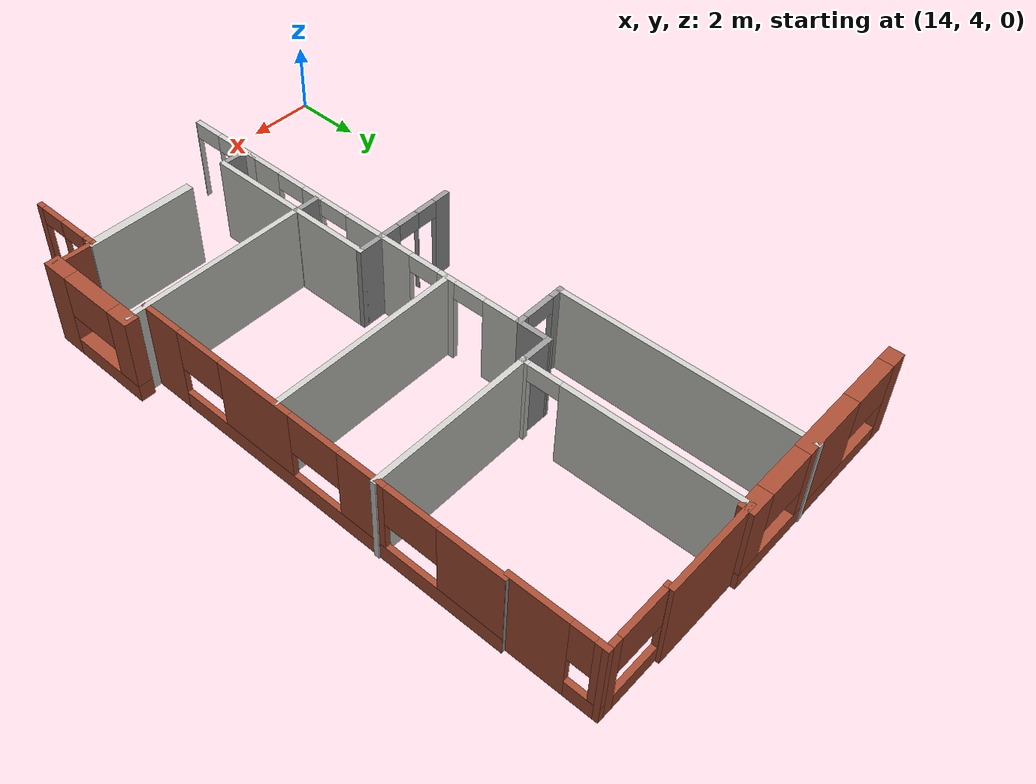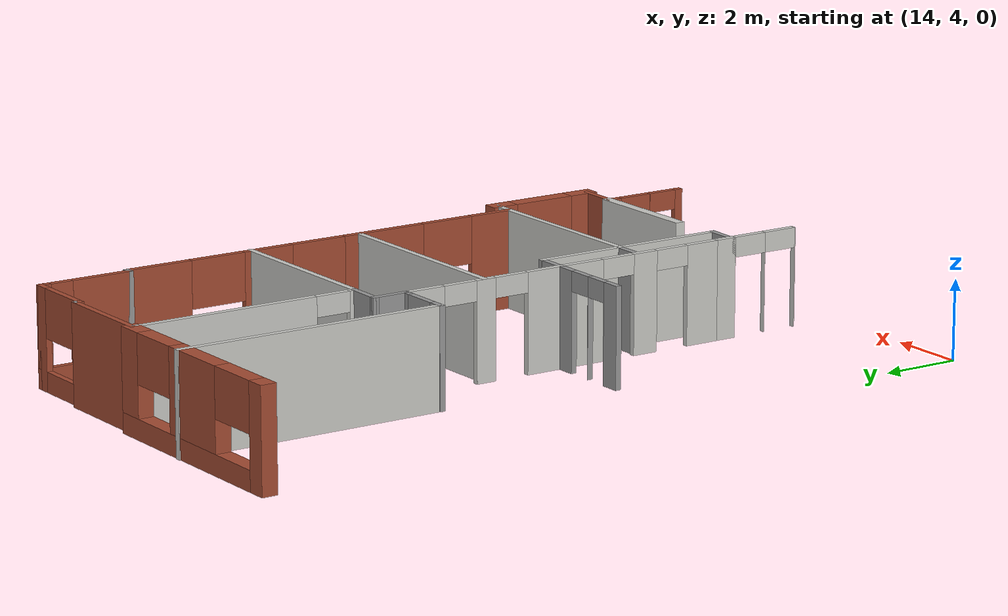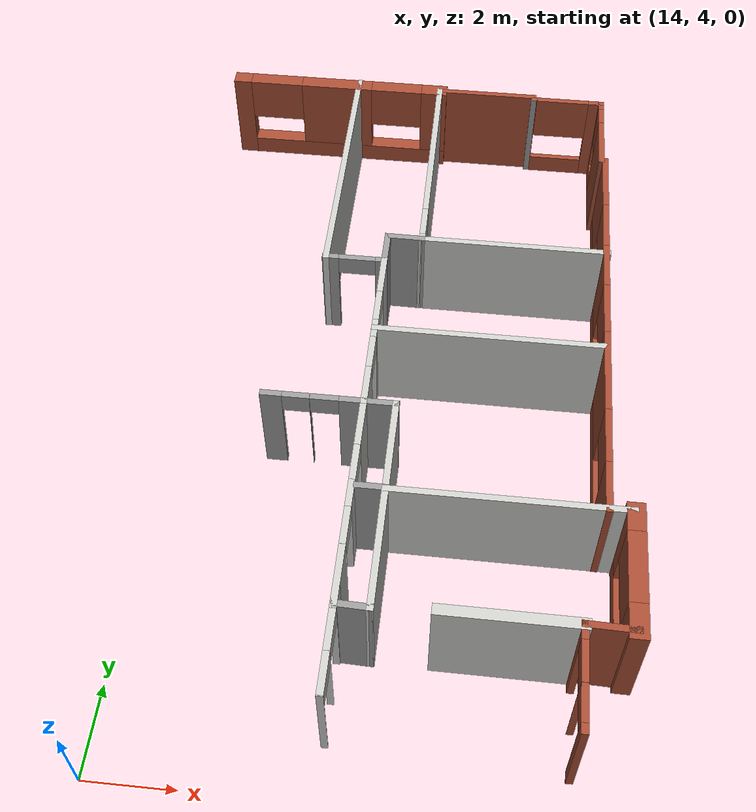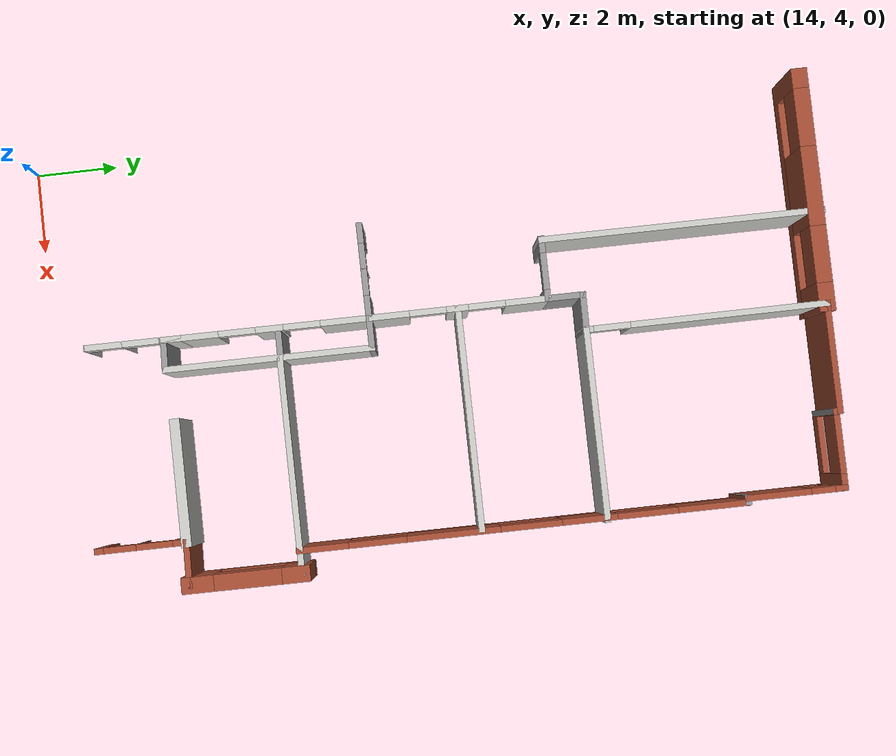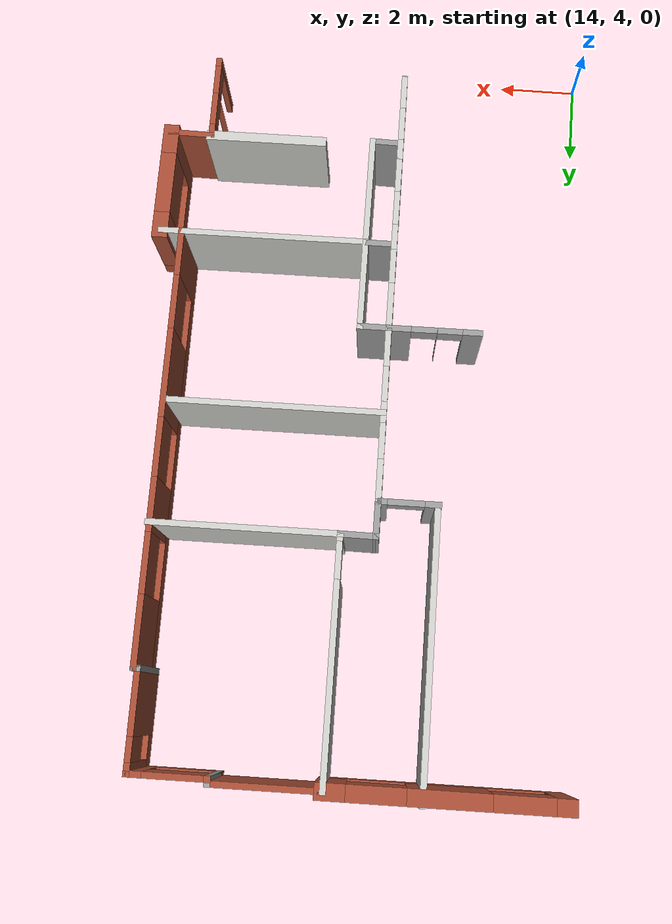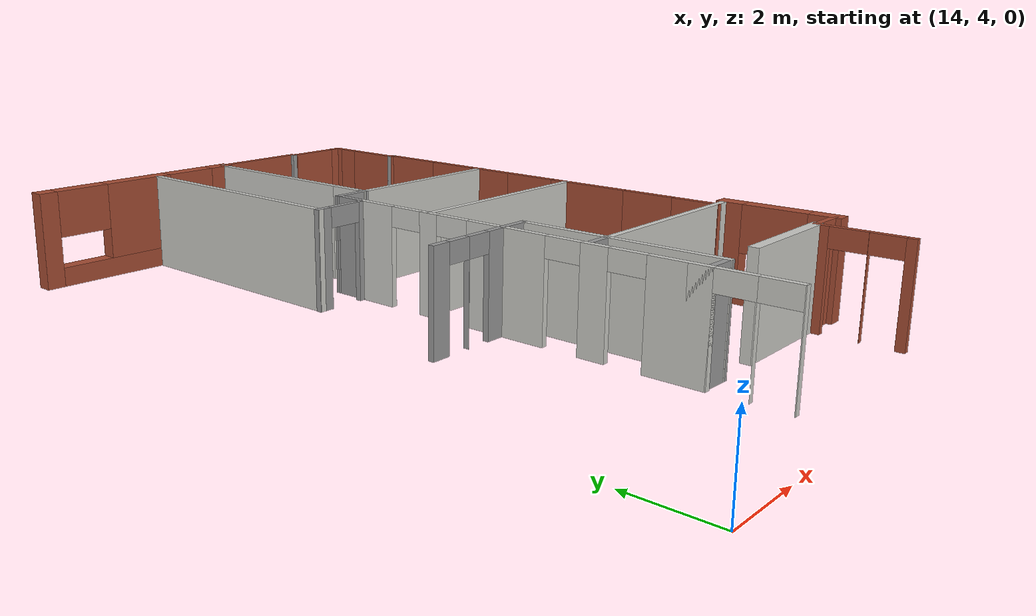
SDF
<sdf version="1.6">
 <model name="CVSSP">
  <pose>15.8584 5.8407 0 0 -0 0</pose>
  <link name="Wall_124">
   <pose>8.26569 9.43515 0 0 -0 1.5708</pose>
   <visual name="Wall_124_Visual_0">
    <pose>-4.86749 0 1.25 0 -0 0</pose>
    <geometry><box><size>1.26502 0.15 2.5</size></box></geometry>
    <material>
     <script><uri>file://media/materials/scripts/gazebo.material</uri><name>Gazebo/Bricks</name></script>
     <ambient>1 1 1 1</ambient>
    </material>
   </visual>
   <collision name="Wall_124_Collision_0">
    <geometry><box><size>1.26502 0.15 2.5</size></box></geometry>
    <pose>-4.86749 0 1.25 0 -0 0</pose>
   </collision>
   <visual name="Wall_124_Visual_1">
    <pose>0.632508 0 0.25 0 -0 0</pose>
    <geometry><box><size>9.73498 0.15 0.5</size></box></geometry>
    <material>
     <script><uri>file://media/materials/scripts/gazebo.material</uri><name>Gazebo/Bricks</name></script>
     <ambient>1 1 1 1</ambient>
    </material>
   </visual>
   <collision name="Wall_124_Collision_1">
    <geometry><box><size>9.73498 0.15 0.5</size></box></geometry>
    <pose>0.632508 0 0.25 0 -0 0</pose>
   </collision>
   <visual name="Wall_124_Visual_2">
    <pose>-1.69625 0 1.5 0 -0 0</pose>
    <geometry><box><size>2.26535 0.15 2</size></box></geometry>
    <material>
     <script><uri>file://media/materials/scripts/gazebo.material</uri><name>Gazebo/Bricks</name></script>
     <ambient>1 1 1 1</ambient>
    </material>
   </visual>
   <collision name="Wall_124_Collision_2">
    <geometry><box><size>2.26535 0.15 2</size></box></geometry>
    <pose>-1.69625 0 1.5 0 -0 0</pose>
   </collision>
   <visual name="Wall_124_Visual_3">
    <pose>1.59133 0 1.5 0 -0 0</pose>
    <geometry><box><size>1.3376 0.15 2</size></box></geometry>
    <material>
     <script><uri>file://media/materials/scripts/gazebo.material</uri><name>Gazebo/Bricks</name></script>
     <ambient>1 1 1 1</ambient>
    </material>
   </visual>
   <collision name="Wall_124_Collision_3">
    <geometry><box><size>1.3376 0.15 2</size></box></geometry>
    <pose>1.59133 0 1.5 0 -0 0</pose>
   </collision>
   <visual name="Wall_124_Visual_4">
    <pose>4.61168 0 1.5 0 -0 0</pose>
    <geometry><box><size>1.77663 0.15 2</size></box></geometry>
    <material>
     <script><uri>file://media/materials/scripts/gazebo.material</uri><name>Gazebo/Bricks</name></script>
     <ambient>1 1 1 1</ambient>
    </material>
   </visual>
   <collision name="Wall_124_Collision_4">
    <geometry><box><size>1.77663 0.15 2</size></box></geometry>
    <pose>4.61168 0 1.5 0 -0 0</pose>
   </collision>
   <visual name="Wall_124_Visual_5">
    <pose>-3.53196 0 1.9 0 -0 0</pose>
    <geometry><box><size>1.40606 0.15 1.2</size></box></geometry>
    <material>
     <script><uri>file://media/materials/scripts/gazebo.material</uri><name>Gazebo/Bricks</name></script>
     <ambient>1 1 1 1</ambient>
    </material>
   </visual>
   <collision name="Wall_124_Collision_5">
    <geometry><box><size>1.40606 0.15 1.2</size></box></geometry>
    <pose>-3.53196 0 1.9 0 -0 0</pose>
   </collision>
   <visual name="Wall_124_Visual_6">
    <pose>0.179474 0 1.9 0 -0 0</pose>
    <geometry><box><size>1.4861 0.15 1.2</size></box></geometry>
    <material>
     <script><uri>file://media/materials/scripts/gazebo.material</uri><name>Gazebo/Bricks</name></script>
     <ambient>1 1 1 1</ambient>
    </material>
   </visual>
   <collision name="Wall_124_Collision_6">
    <geometry><box><size>1.4861 0.15 1.2</size></box></geometry>
    <pose>0.179474 0 1.9 0 -0 0</pose>
   </collision>
   <visual name="Wall_124_Visual_7">
    <pose>2.99175 0 1.9 0 -0 0</pose>
    <geometry><box><size>1.46323 0.15 1.2</size></box></geometry>
    <material>
     <script><uri>file://media/materials/scripts/gazebo.material</uri><name>Gazebo/Bricks</name></script>
     <ambient>1 1 1 1</ambient>
    </material>
   </visual>
   <collision name="Wall_124_Collision_7">
    <geometry><box><size>1.46323 0.15 1.2</size></box></geometry>
    <pose>2.99175 0 1.9 0 -0 0</pose>
   </collision>
  </link>
  <link name="Wall_125">
   <collision name="Wall_125_Collision">
    <geometry><box><size>0.240056 0.15 2.5</size></box></geometry>
    <pose>0 0 1.25 0 -0 0</pose>
   </collision>
   <visual name="Wall_125_Visual">
    <pose>0 0 1.25 0 -0 0</pose>
    <geometry><box><size>0.240056 0.15 2.5</size></box></geometry>
    <material>
     <script><uri>file://media/materials/scripts/gazebo.material</uri><name>Gazebo/Grey</name></script>
     <ambient>1 1 1 1</ambient>
    </material>
   </visual>
   <pose>8.21072 14.8602 0 0 -0 3.14159</pose>
  </link>
  <link name="Wall_126">
   <pose>8.16569 16.0351 0 0 -0 1.5708</pose>
   <visual name="Wall_126_Visual_0">
    <pose>-0.445028 0 1.25 0 -0 0</pose>
    <geometry><box><size>1.60994 0.15 2.5</size></box></geometry>
    <material>
     <script><uri>file://media/materials/scripts/gazebo.material</uri><name>Gazebo/Bricks</name></script>
     <ambient>1 1 1 1</ambient>
    </material>
   </visual>
   <collision name="Wall_126_Collision_0">
    <geometry><box><size>1.60994 0.15 2.5</size></box></geometry>
    <pose>-0.445028 0 1.25 0 -0 0</pose>
   </collision>
   <visual name="Wall_126_Visual_1">
    <pose>0.804972 0 0.25 0 -0 0</pose>
    <geometry><box><size>0.890056 0.15 0.5</size></box></geometry>
    <material>
     <script><uri>file://media/materials/scripts/gazebo.material</uri><name>Gazebo/Bricks</name></script>
     <ambient>1 1 1 1</ambient>
    </material>
   </visual>
   <collision name="Wall_126_Collision_1">
    <geometry><box><size>0.890056 0.15 0.5</size></box></geometry>
    <pose>0.804972 0 0.25 0 -0 0</pose>
   </collision>
   <visual name="Wall_126_Visual_2">
    <pose>1.09062 0 1.5 0 -0 0</pose>
    <geometry><box><size>0.318757 0.15 2</size></box></geometry>
    <material>
     <script><uri>file://media/materials/scripts/gazebo.material</uri><name>Gazebo/Bricks</name></script>
     <ambient>1 1 1 1</ambient>
    </material>
   </visual>
   <collision name="Wall_126_Collision_2">
    <geometry><box><size>0.318757 0.15 2</size></box></geometry>
    <pose>1.09062 0 1.5 0 -0 0</pose>
   </collision>
   <visual name="Wall_126_Visual_3">
    <pose>0.645594 0 1.9 0 -0 0</pose>
    <geometry><box><size>0.571299 0.15 1.2</size></box></geometry>
    <material>
     <script><uri>file://media/materials/scripts/gazebo.material</uri><name>Gazebo/Bricks</name></script>
     <ambient>1 1 1 1</ambient>
    </material>
   </visual>
   <collision name="Wall_126_Collision_3">
    <geometry><box><size>0.571299 0.15 1.2</size></box></geometry>
    <pose>0.645594 0 1.9 0 -0 0</pose>
   </collision>
  </link>
  <link name="Wall_127">
   <pose>7.24069 17.2101 0 0 -0 3.14159</pose>
   <visual name="Wall_127_Visual_0">
    <pose>-0.790859 0 1.25 0 -0 0</pose>
    <geometry><box><size>0.418283 0.15 2.5</size></box></geometry>
    <material>
     <script><uri>file://media/materials/scripts/gazebo.material</uri><name>Gazebo/Bricks</name></script>
     <ambient>1 1 1 1</ambient>
    </material>
   </visual>
   <collision name="Wall_127_Collision_0">
    <geometry><box><size>0.418283 0.15 2.5</size></box></geometry>
    <pose>-0.790859 0 1.25 0 -0 0</pose>
   </collision>
   <visual name="Wall_127_Visual_1">
    <pose>0.209141 0 0.25 0 -0 0</pose>
    <geometry><box><size>1.58172 0.15 0.5</size></box></geometry>
    <material>
     <script><uri>file://media/materials/scripts/gazebo.material</uri><name>Gazebo/Bricks</name></script>
     <ambient>1 1 1 1</ambient>
    </material>
   </visual>
   <collision name="Wall_127_Collision_1">
    <geometry><box><size>1.58172 0.15 0.5</size></box></geometry>
    <pose>0.209141 0 0.25 0 -0 0</pose>
   </collision>
   <visual name="Wall_127_Visual_2">
    <pose>0.917888 0 1.5 0 -0 0</pose>
    <geometry><box><size>0.164224 0.15 2</size></box></geometry>
    <material>
     <script><uri>file://media/materials/scripts/gazebo.material</uri><name>Gazebo/Bricks</name></script>
     <ambient>1 1 1 1</ambient>
    </material>
   </visual>
   <collision name="Wall_127_Collision_2">
    <geometry><box><size>0.164224 0.15 2</size></box></geometry>
    <pose>0.917888 0 1.5 0 -0 0</pose>
   </collision>
   <visual name="Wall_127_Visual_3">
    <pose>0.127029 0 1.9 0 -0 0</pose>
    <geometry><box><size>1.41749 0.15 1.2</size></box></geometry>
    <material>
     <script><uri>file://media/materials/scripts/gazebo.material</uri><name>Gazebo/Bricks</name></script>
     <ambient>1 1 1 1</ambient>
    </material>
   </visual>
   <collision name="Wall_127_Collision_3">
    <geometry><box><size>1.41749 0.15 1.2</size></box></geometry>
    <pose>0.127029 0 1.9 0 -0 0</pose>
   </collision>
  </link>
  <link name="Wall_128">
   <collision name="Wall_128_Collision">
    <geometry><box><size>0.25 0.15 2.5</size></box></geometry>
    <pose>0 0 1.25 0 -0 0</pose>
   </collision>
   <visual name="Wall_128_Visual">
    <pose>0 0 1.25 0 -0 0</pose>
    <geometry><box><size>0.25 0.15 2.5</size></box></geometry>
    <material>
     <script><uri>file://media/materials/scripts/gazebo.material</uri><name>Gazebo/Grey</name></script>
     <ambient>1 1 1 1</ambient>
    </material>
   </visual>
   <pose>6.31569 17.2601 0 0 -0 1.5708</pose>
  </link>
  <link name="Wall_129">
   <collision name="Wall_129_Collision">
    <geometry><box><size>2.76709 0.15 2.5</size></box></geometry>
    <pose>0 0 1.25 0 -0 0</pose>
   </collision>
   <visual name="Wall_129_Visual">
    <pose>0 0 1.25 0 -0 0</pose>
    <geometry><box><size>2.76709 0.15 2.5</size></box></geometry>
    <material>
     <script><uri>file://media/materials/scripts/gazebo.material</uri><name>Gazebo/Bricks</name></script>
     <ambient>1 1 1 1</ambient>
    </material>
   </visual>
   <pose>5.00715 17.3102 0 0 -0 3.14153</pose>
  </link>
  <link name="Wall_13">
   <pose>1.74828 6.25397 0 0 -0 0.002327</pose>
   <visual name="Wall_13_Visual_0">
    <pose>-0.957237 0 1.25 0 -0 0</pose>
    <geometry><box><size>0.497877 0.15 2.5</size></box></geometry>
    <material>
     <script><uri>file://media/materials/scripts/gazebo.material</uri><name>Gazebo/Grey</name></script>
     <ambient>1 1 1 1</ambient>
    </material>
   </visual>
   <collision name="Wall_13_Collision_0">
    <geometry><box><size>0.497877 0.15 2.5</size></box></geometry>
    <pose>-0.957237 0 1.25 0 -0 0</pose>
   </collision>
   <visual name="Wall_13_Visual_1">
    <pose>-0.078249 0 1.25 0 -0 0</pose>
    <geometry><box><size>0.008926 0.15 2.5</size></box></geometry>
    <material>
     <script><uri>file://media/materials/scripts/gazebo.material</uri><name>Gazebo/Grey</name></script>
     <ambient>1 1 1 1</ambient>
    </material>
   </visual>
   <collision name="Wall_13_Collision_1">
    <geometry><box><size>0.008926 0.15 2.5</size></box></geometry>
    <pose>-0.078249 0 1.25 0 -0 0</pose>
   </collision>
   <visual name="Wall_13_Visual_2">
    <pose>0.890476 0 1.25 0 -0 0</pose>
    <geometry><box><size>0.631399 0.15 2.5</size></box></geometry>
    <material>
     <script><uri>file://media/materials/scripts/gazebo.material</uri><name>Gazebo/Grey</name></script>
     <ambient>1 1 1 1</ambient>
    </material>
   </visual>
   <collision name="Wall_13_Collision_2">
    <geometry><box><size>0.631399 0.15 2.5</size></box></geometry>
    <pose>0.890476 0 1.25 0 -0 0</pose>
   </collision>
   <visual name="Wall_13_Visual_3">
    <pose>-0.395505 0 2.25 0 -0 0</pose>
    <geometry><box><size>0.625586 0.15 0.5</size></box></geometry>
    <material>
     <script><uri>file://media/materials/scripts/gazebo.material</uri><name>Gazebo/Grey</name></script>
     <ambient>1 1 1 1</ambient>
    </material>
   </visual>
   <collision name="Wall_13_Collision_3">
    <geometry><box><size>0.625586 0.15 0.5</size></box></geometry>
    <pose>-0.395505 0 2.25 0 -0 0</pose>
   </collision>
   <visual name="Wall_13_Visual_4">
    <pose>0.250495 0 2.25 0 -0 0</pose>
    <geometry><box><size>0.648562 0.15 0.5</size></box></geometry>
    <material>
     <script><uri>file://media/materials/scripts/gazebo.material</uri><name>Gazebo/Grey</name></script>
     <ambient>1 1 1 1</ambient>
    </material>
   </visual>
   <collision name="Wall_13_Collision_4">
    <geometry><box><size>0.648562 0.15 0.5</size></box></geometry>
    <pose>0.250495 0 2.25 0 -0 0</pose>
   </collision>
  </link>
  <link name="Wall_130">
   <pose>3.70715 14.3803 0 0 0 -1.56788</pose>
   <visual name="Wall_130_Visual_0">
    <pose>-0.573725 0 1.25 0 -0 0</pose>
    <geometry><box><size>4.86265 0.15 2.5</size></box></geometry>
    <material>
     <script><uri>file://media/materials/scripts/gazebo.material</uri><name>Gazebo/CeilingTiled</name></script>
     <ambient>1 1 1 1</ambient>
    </material>
   </visual>
   <collision name="Wall_130_Collision_0">
    <geometry><box><size>4.86265 0.15 2.5</size></box></geometry>
    <pose>-0.573725 0 1.25 0 -0 0</pose>
   </collision>
   <visual name="Wall_130_Visual_1">
    <pose>2.88132 0 1.25 0 -0 0</pose>
    <geometry><box><size>0.24745 0.15 2.5</size></box></geometry>
    <material>
     <script><uri>file://media/materials/scripts/gazebo.material</uri><name>Gazebo/CeilingTiled</name></script>
     <ambient>1 1 1 1</ambient>
    </material>
   </visual>
   <collision name="Wall_130_Collision_1">
    <geometry><box><size>0.24745 0.15 2.5</size></box></geometry>
    <pose>2.88132 0 1.25 0 -0 0</pose>
   </collision>
   <visual name="Wall_130_Visual_2">
    <pose>2.3076 0 2.25 0 -0 0</pose>
    <geometry><box><size>0.9 0.15 0.5</size></box></geometry>
    <material>
     <script><uri>file://media/materials/scripts/gazebo.material</uri><name>Gazebo/CeilingTiled</name></script>
     <ambient>1 1 1 1</ambient>
    </material>
   </visual>
   <collision name="Wall_130_Collision_2">
    <geometry><box><size>0.9 0.15 0.5</size></box></geometry>
    <pose>2.3076 0 2.25 0 -0 0</pose>
   </collision>
  </link>
  <link name="Wall_131">
   <collision name="Wall_131_Collision">
    <geometry><box><size>1.00006 0.15 2.5</size></box></geometry>
    <pose>0 0 1.25 0 -0 0</pose>
   </collision>
   <visual name="Wall_131_Visual">
    <pose>0 0 1.25 0 -0 0</pose>
    <geometry><box><size>1.00006 0.15 2.5</size></box></geometry>
    <material>
     <script><uri>file://media/materials/scripts/gazebo.material</uri><name>Gazebo/Grey</name></script>
     <ambient>1 1 1 1</ambient>
    </material>
   </visual>
   <pose>3.29069 11.4552 0 0 -0 3.12989</pose>
  </link>
  <link name="Wall_132">
   <collision name="Wall_132_Collision">
    <geometry><box><size>1 0.15 2.5</size></box></geometry>
    <pose>0 0 1.25 0 -0 0</pose>
   </collision>
   <visual name="Wall_132_Visual">
    <pose>0 0 1.25 0 -0 0</pose>
    <geometry><box><size>1 0.15 2.5</size></box></geometry>
    <material>
     <script><uri>file://media/materials/scripts/gazebo.material</uri><name>Gazebo/Grey</name></script>
     <ambient>1 1 1 1</ambient>
    </material>
   </visual>
   <pose>2.86569 11.0351 0 0 0 -1.5708</pose>
  </link>
  <link name="Wall_133">
   <pose>2.13851 10.6102 0 0 -0 3.14159</pose>
   <visual name="Wall_133_Visual_0">
    <pose>-0.654159 0 1.25 0 -0 0</pose>
    <geometry><box><size>0.296029 0.15 2.5</size></box></geometry>
    <material>
     <script><uri>file://media/materials/scripts/gazebo.material</uri><name>Gazebo/Grey</name></script>
     <ambient>1 1 1 1</ambient>
    </material>
   </visual>
   <collision name="Wall_133_Collision_0">
    <geometry><box><size>0.296029 0.15 2.5</size></box></geometry>
    <pose>-0.654159 0 1.25 0 -0 0</pose>
   </collision>
   <visual name="Wall_133_Visual_1">
    <pose>0.598015 0 1.25 0 -0 0</pose>
    <geometry><box><size>0.408319 0.15 2.5</size></box></geometry>
    <material>
     <script><uri>file://media/materials/scripts/gazebo.material</uri><name>Gazebo/Grey</name></script>
     <ambient>1 1 1 1</ambient>
    </material>
   </visual>
   <collision name="Wall_133_Collision_1">
    <geometry><box><size>0.408319 0.15 2.5</size></box></geometry>
    <pose>0.598015 0 1.25 0 -0 0</pose>
   </collision>
   <visual name="Wall_133_Visual_2">
    <pose>-0.056145 0 2.25 0 -0 0</pose>
    <geometry><box><size>0.9 0.15 0.5</size></box></geometry>
    <material>
     <script><uri>file://media/materials/scripts/gazebo.material</uri><name>Gazebo/Grey</name></script>
     <ambient>1 1 1 1</ambient>
    </material>
   </visual>
   <collision name="Wall_133_Collision_2">
    <geometry><box><size>0.9 0.15 0.5</size></box></geometry>
    <pose>-0.056145 0 2.25 0 -0 0</pose>
   </collision>
  </link>
  <link name="Wall_138">
   <pose>0.909101 17.3103 0 0 -0 0</pose>
   <visual name="Wall_138_Visual_0">
    <pose>-2.74658 0 1.25 0 -0 0</pose>
    <geometry><box><size>0.48554 0.4 2.5</size></box></geometry>
    <material>
     <script><uri>file://media/materials/scripts/gazebo.material</uri><name>Gazebo/Bricks</name></script>
     <ambient>1 1 1 1</ambient>
    </material>
   </visual>
   <collision name="Wall_138_Collision_0">
    <geometry><box><size>0.48554 0.4 2.5</size></box></geometry>
    <pose>-2.74658 0 1.25 0 -0 0</pose>
   </collision>
   <visual name="Wall_138_Visual_1">
    <pose>0.24277 0 0.25 0 -0 0</pose>
    <geometry><box><size>5.49316 0.4 0.5</size></box></geometry>
    <material>
     <script><uri>file://media/materials/scripts/gazebo.material</uri><name>Gazebo/Bricks</name></script>
     <ambient>1 1 1 1</ambient>
    </material>
   </visual>
   <collision name="Wall_138_Collision_1">
    <geometry><box><size>5.49316 0.4 0.5</size></box></geometry>
    <pose>0.24277 0 0.25 0 -0 0</pose>
   </collision>
   <visual name="Wall_138_Visual_2">
    <pose>-0.091893 0 1.5 0 -0 0</pose>
    <geometry><box><size>1.95406 0.4 2</size></box></geometry>
    <material>
     <script><uri>file://media/materials/scripts/gazebo.material</uri><name>Gazebo/Bricks</name></script>
     <ambient>1 1 1 1</ambient>
    </material>
   </visual>
   <collision name="Wall_138_Collision_2">
    <geometry><box><size>1.95406 0.4 2</size></box></geometry>
    <pose>-0.091893 0 1.5 0 -0 0</pose>
   </collision>
   <visual name="Wall_138_Visual_3">
    <pose>2.63456 0 1.5 0 -0 0</pose>
    <geometry><box><size>0.709588 0.4 2</size></box></geometry>
    <material>
     <script><uri>file://media/materials/scripts/gazebo.material</uri><name>Gazebo/Bricks</name></script>
     <ambient>1 1 1 1</ambient>
    </material>
   </visual>
   <collision name="Wall_138_Collision_3">
    <geometry><box><size>0.709588 0.4 2</size></box></geometry>
    <pose>2.63456 0 1.5 0 -0 0</pose>
   </collision>
   <visual name="Wall_138_Visual_4">
    <pose>-1.78637 0 1.9 0 -0 0</pose>
    <geometry><box><size>1.43488 0.4 1.2</size></box></geometry>
    <material>
     <script><uri>file://media/materials/scripts/gazebo.material</uri><name>Gazebo/Bricks</name></script>
     <ambient>1 1 1 1</ambient>
    </material>
   </visual>
   <collision name="Wall_138_Collision_4">
    <geometry><box><size>1.43488 0.4 1.2</size></box></geometry>
    <pose>-1.78637 0 1.9 0 -0 0</pose>
   </collision>
   <visual name="Wall_138_Visual_5">
    <pose>1.58245 0 1.9 0 -0 0</pose>
    <geometry><box><size>1.39462 0.4 1.2</size></box></geometry>
    <material>
     <script><uri>file://media/materials/scripts/gazebo.material</uri><name>Gazebo/Bricks</name></script>
     <ambient>1 1 1 1</ambient>
    </material>
   </visual>
   <collision name="Wall_138_Collision_5">
    <geometry><box><size>1.39462 0.4 1.2</size></box></geometry>
    <pose>1.58245 0 1.9 0 -0 0</pose>
   </collision>
  </link>
  <link name="Wall_140">
   <collision name="Wall_140_Collision">
    <geometry><box><size>7 0.15 2.5</size></box></geometry>
    <pose>0 0 1.25 0 -0 0</pose>
   </collision>
   <visual name="Wall_140_Visual">
    <pose>0 0 1.25 0 -0 0</pose>
    <geometry><box><size>7 0.15 2.5</size></box></geometry>
    <material>
     <script><uri>file://media/materials/scripts/gazebo.material</uri><name>Gazebo/CeilingTiled</name></script>
     <ambient>1 1 1 1</ambient>
    </material>
   </visual>
   <pose>1.42873 14.0351 0 0 -0 1.5708</pose>
  </link>
  <link name="Wall_145">
   <pose>2.87252 8.43337 0 0 0 -1.56766</pose>
   <visual name="Wall_145_Visual_0">
    <pose>-1.69679 0 1.25 0 -0 0</pose>
    <geometry><box><size>1.11 0.15 2.5</size></box></geometry>
    <material>
     <script><uri>file://media/materials/scripts/gazebo.material</uri><name>Gazebo/CeilingTiled</name></script>
     <ambient>1 1 1 1</ambient>
    </material>
   </visual>
   <collision name="Wall_145_Collision_0">
    <geometry><box><size>1.11 0.15 2.5</size></box></geometry>
    <pose>-1.69679 0 1.25 0 -0 0</pose>
   </collision>
   <visual name="Wall_145_Visual_1">
    <pose>0.026283 0 1.25 0 -0 0</pose>
    <geometry><box><size>0.536143 0.15 2.5</size></box></geometry>
    <material>
     <script><uri>file://media/materials/scripts/gazebo.material</uri><name>Gazebo/CeilingTiled</name></script>
     <ambient>1 1 1 1</ambient>
    </material>
   </visual>
   <collision name="Wall_145_Collision_1">
    <geometry><box><size>0.536143 0.15 2.5</size></box></geometry>
    <pose>0.026283 0 1.25 0 -0 0</pose>
   </collision>
   <visual name="Wall_145_Visual_2">
    <pose>1.72307 0 1.25 0 -0 0</pose>
    <geometry><box><size>1.05743 0.15 2.5</size></box></geometry>
    <material>
     <script><uri>file://media/materials/scripts/gazebo.material</uri><name>Gazebo/CeilingTiled</name></script>
     <ambient>1 1 1 1</ambient>
    </material>
   </visual>
   <collision name="Wall_145_Collision_2">
    <geometry><box><size>1.05743 0.15 2.5</size></box></geometry>
    <pose>1.72307 0 1.25 0 -0 0</pose>
   </collision>
   <visual name="Wall_145_Visual_3">
    <pose>-0.691788 0 2.25 0 -0 0</pose>
    <geometry><box><size>0.9 0.15 0.5</size></box></geometry>
    <material>
     <script><uri>file://media/materials/scripts/gazebo.material</uri><name>Gazebo/CeilingTiled</name></script>
     <ambient>1 1 1 1</ambient>
    </material>
   </visual>
   <collision name="Wall_145_Collision_3">
    <geometry><box><size>0.9 0.15 0.5</size></box></geometry>
    <pose>-0.691788 0 2.25 0 -0 0</pose>
   </collision>
   <visual name="Wall_145_Visual_4">
    <pose>0.744355 0 2.25 0 -0 0</pose>
    <geometry><box><size>0.9 0.15 0.5</size></box></geometry>
    <material>
     <script><uri>file://media/materials/scripts/gazebo.material</uri><name>Gazebo/CeilingTiled</name></script>
     <ambient>1 1 1 1</ambient>
    </material>
   </visual>
   <collision name="Wall_145_Collision_4">
    <geometry><box><size>0.9 0.15 0.5</size></box></geometry>
    <pose>0.744355 0 2.25 0 -0 0</pose>
   </collision>
  </link>
  <link name="Wall_147">
   <collision name="Wall_147_Collision">
    <geometry><box><size>4.75 0.15 2.5</size></box></geometry>
    <pose>0 0 1.25 0 -0 0</pose>
   </collision>
   <visual name="Wall_147_Visual">
    <pose>0 0 1.25 0 -0 0</pose>
    <geometry><box><size>4.75 0.15 2.5</size></box></geometry>
    <material>
     <script><uri>file://media/materials/scripts/gazebo.material</uri><name>Gazebo/CeilingTiled</name></script>
     <ambient>1 1 1 1</ambient>
    </material>
   </visual>
   <pose>6.00575 11.4502 0 0 -0 0</pose>
  </link>
  <link name="Wall_149">
   <collision name="Wall_149_Collision">
    <geometry><box><size>5.5 0.15 2.5</size></box></geometry>
    <pose>0 0 1.25 0 -0 0</pose>
   </collision>
   <visual name="Wall_149_Visual">
    <pose>0 0 1.25 0 -0 0</pose>
    <geometry><box><size>5.5 0.15 2.5</size></box></geometry>
    <material>
     <script><uri>file://media/materials/scripts/gazebo.material</uri><name>Gazebo/CeilingTiled</name></script>
     <ambient>1 1 1 1</ambient>
    </material>
   </visual>
   <pose>5.5504 8.4214 0 0 -0 0</pose>
  </link>
  <link name="Wall_15">
   <pose>2.87921 2.82897 0 0 0 -1.57084</pose>
   <visual name="Wall_15_Visual_0">
    <pose>-2.87158 0 1.25 0 -0 0</pose>
    <geometry><box><size>1.26211 0.15 2.5</size></box></geometry>
    <material>
     <script><uri>file://media/materials/scripts/gazebo.material</uri><name>Gazebo/CeilingTiled</name></script>
     <ambient>1 1 1 1</ambient>
    </material>
   </visual>
   <collision name="Wall_15_Collision_0">
    <geometry><box><size>1.26211 0.15 2.5</size></box></geometry>
    <pose>-2.87158 0 1.25 0 -0 0</pose>
   </collision>
   <visual name="Wall_15_Visual_1">
    <pose>-1.00191 0 1.25 0 -0 0</pose>
    <geometry><box><size>0.677232 0.15 2.5</size></box></geometry>
    <material>
     <script><uri>file://media/materials/scripts/gazebo.material</uri><name>Gazebo/CeilingTiled</name></script>
     <ambient>1 1 1 1</ambient>
    </material>
   </visual>
   <collision name="Wall_15_Collision_1">
    <geometry><box><size>0.677232 0.15 2.5</size></box></geometry>
    <pose>-1.00191 0 1.25 0 -0 0</pose>
   </collision>
   <visual name="Wall_15_Visual_2">
    <pose>0.958496 0 1.25 0 -0 0</pose>
    <geometry><box><size>1.44358 0.15 2.5</size></box></geometry>
    <material>
     <script><uri>file://media/materials/scripts/gazebo.material</uri><name>Gazebo/CeilingTiled</name></script>
     <ambient>1 1 1 1</ambient>
    </material>
   </visual>
   <collision name="Wall_15_Collision_2">
    <geometry><box><size>1.44358 0.15 2.5</size></box></geometry>
    <pose>0.958496 0 1.25 0 -0 0</pose>
   </collision>
   <visual name="Wall_15_Visual_3">
    <pose>1.40792 0 1.25 0 -0 0</pose>
    <geometry><box><size>0.544735 0.15 2.5</size></box></geometry>
    <material>
     <script><uri>file://media/materials/scripts/gazebo.material</uri><name>Gazebo/CeilingTiled</name></script>
     <ambient>1 1 1 1</ambient>
    </material>
   </visual>
   <collision name="Wall_15_Collision_3">
    <geometry><box><size>0.544735 0.15 2.5</size></box></geometry>
    <pose>1.40792 0 1.25 0 -0 0</pose>
   </collision>
   <visual name="Wall_15_Visual_4">
    <pose>2.58063 0 1.25 0 -0 0</pose>
    <geometry><box><size>0.000692 0.15 2.5</size></box></geometry>
    <material>
     <script><uri>file://media/materials/scripts/gazebo.material</uri><name>Gazebo/CeilingTiled</name></script>
     <ambient>1 1 1 1</ambient>
    </material>
   </visual>
   <collision name="Wall_15_Collision_4">
    <geometry><box><size>0.000692 0.15 2.5</size></box></geometry>
    <pose>2.58063 0 1.25 0 -0 0</pose>
   </collision>
   <visual name="Wall_15_Visual_5">
    <pose>3.4918 0 1.25 0 -0 0</pose>
    <geometry><box><size>0.021654 0.15 2.5</size></box></geometry>
    <material>
     <script><uri>file://media/materials/scripts/gazebo.material</uri><name>Gazebo/CeilingTiled</name></script>
     <ambient>1 1 1 1</ambient>
    </material>
   </visual>
   <collision name="Wall_15_Collision_5">
    <geometry><box><size>0.021654 0.15 2.5</size></box></geometry>
    <pose>3.4918 0 1.25 0 -0 0</pose>
   </collision>
   <visual name="Wall_15_Visual_6">
    <pose>-1.79053 0 2.25 0 -0 0</pose>
    <geometry><box><size>0.9 0.15 0.5</size></box></geometry>
    <material>
     <script><uri>file://media/materials/scripts/gazebo.material</uri><name>Gazebo/CeilingTiled</name></script>
     <ambient>1 1 1 1</ambient>
    </material>
   </visual>
   <collision name="Wall_15_Collision_6">
    <geometry><box><size>0.9 0.15 0.5</size></box></geometry>
    <pose>-1.79053 0 2.25 0 -0 0</pose>
   </collision>
   <visual name="Wall_15_Visual_7">
    <pose>-0.213872 0 2.25 0 -0 0</pose>
    <geometry><box><size>0.898845 0.15 0.5</size></box></geometry>
    <material>
     <script><uri>file://media/materials/scripts/gazebo.material</uri><name>Gazebo/CeilingTiled</name></script>
     <ambient>1 1 1 1</ambient>
    </material>
   </visual>
   <collision name="Wall_15_Collision_7">
    <geometry><box><size>0.898845 0.15 0.5</size></box></geometry>
    <pose>-0.213872 0 2.25 0 -0 0</pose>
   </collision>
   <visual name="Wall_15_Visual_8">
    <pose>2.13029 0 2.25 0 -0 0</pose>
    <geometry><box><size>0.9 0.15 0.5</size></box></geometry>
    <material>
     <script><uri>file://media/materials/scripts/gazebo.material</uri><name>Gazebo/CeilingTiled</name></script>
     <ambient>1 1 1 1</ambient>
    </material>
   </visual>
   <collision name="Wall_15_Collision_8">
    <geometry><box><size>0.9 0.15 0.5</size></box></geometry>
    <pose>2.13029 0 2.25 0 -0 0</pose>
   </collision>
   <visual name="Wall_15_Visual_9">
    <pose>2.13029 0 2.25 0 -0 0</pose>
    <geometry><box><size>0.9 0.15 0.5</size></box></geometry>
    <material>
     <script><uri>file://media/materials/scripts/gazebo.material</uri><name>Gazebo/CeilingTiled</name></script>
     <ambient>1 1 1 1</ambient>
    </material>
   </visual>
   <collision name="Wall_15_Collision_9">
    <geometry><box><size>0.9 0.15 0.5</size></box></geometry>
    <pose>2.13029 0 2.25 0 -0 0</pose>
   </collision>
   <visual name="Wall_15_Visual_10">
    <pose>3.03098 0 2.25 0 -0 0</pose>
    <geometry><box><size>0.9 0.15 0.5</size></box></geometry>
    <material>
     <script><uri>file://media/materials/scripts/gazebo.material</uri><name>Gazebo/CeilingTiled</name></script>
     <ambient>1 1 1 1</ambient>
    </material>
   </visual>
   <collision name="Wall_15_Collision_10">
    <geometry><box><size>0.9 0.15 0.5</size></box></geometry>
    <pose>3.03098 0 2.25 0 -0 0</pose>
   </collision>
  </link>
  <link name="Wall_65">
   <pose>7.76963 0.267495 0 0 -0 1.57083</pose>
   <visual name="Wall_65_Visual_0">
    <pose>-1.03231 0 1.25 0 -0 0</pose>
    <geometry><box><size>0.224998 0.15 2.5</size></box></geometry>
    <material>
     <script><uri>file://media/materials/scripts/gazebo.material</uri><name>Gazebo/Bricks</name></script>
     <ambient>1 1 1 1</ambient>
    </material>
   </visual>
   <collision name="Wall_65_Collision_0">
    <geometry><box><size>0.224998 0.15 2.5</size></box></geometry>
    <pose>-1.03231 0 1.25 0 -0 0</pose>
   </collision>
   <visual name="Wall_65_Visual_1">
    <pose>-0.137075 0 1.25 0 -0 0</pose>
    <geometry><box><size>0.005469 0.15 2.5</size></box></geometry>
    <material>
     <script><uri>file://media/materials/scripts/gazebo.material</uri><name>Gazebo/Bricks</name></script>
     <ambient>1 1 1 1</ambient>
    </material>
   </visual>
   <collision name="Wall_65_Collision_1">
    <geometry><box><size>0.005469 0.15 2.5</size></box></geometry>
    <pose>-0.137075 0 1.25 0 -0 0</pose>
   </collision>
   <visual name="Wall_65_Visual_2">
    <pose>0.945234 0 1.25 0 -0 0</pose>
    <geometry><box><size>0.399148 0.15 2.5</size></box></geometry>
    <material>
     <script><uri>file://media/materials/scripts/gazebo.material</uri><name>Gazebo/Bricks</name></script>
     <ambient>1 1 1 1</ambient>
    </material>
   </visual>
   <collision name="Wall_65_Collision_2">
    <geometry><box><size>0.399148 0.15 2.5</size></box></geometry>
    <pose>0.945234 0 1.25 0 -0 0</pose>
   </collision>
   <visual name="Wall_65_Visual_3">
    <pose>-0.52981 0 2.25 0 -0 0</pose>
    <geometry><box><size>0.78 0.15 0.5</size></box></geometry>
    <material>
     <script><uri>file://media/materials/scripts/gazebo.material</uri><name>Gazebo/Bricks</name></script>
     <ambient>1 1 1 1</ambient>
    </material>
   </visual>
   <collision name="Wall_65_Collision_3">
    <geometry><box><size>0.78 0.15 0.5</size></box></geometry>
    <pose>-0.52981 0 2.25 0 -0 0</pose>
   </collision>
   <visual name="Wall_65_Visual_4">
    <pose>0.305659 0 2.25 0 -0 0</pose>
    <geometry><box><size>0.88 0.15 0.5</size></box></geometry>
    <material>
     <script><uri>file://media/materials/scripts/gazebo.material</uri><name>Gazebo/Bricks</name></script>
     <ambient>1 1 1 1</ambient>
    </material>
   </visual>
   <collision name="Wall_65_Collision_4">
    <geometry><box><size>0.88 0.15 0.5</size></box></geometry>
    <pose>0.305659 0 2.25 0 -0 0</pose>
   </collision>
  </link>
  <link name="Wall_66">
   <collision name="Wall_66_Collision">
    <geometry><box><size>3.09993 0.25 2.5</size></box></geometry>
    <pose>0 0 1.25 0 -0 0</pose>
   </collision>
   <visual name="Wall_66_Visual">
    <pose>0 0 1.25 0 -0 0</pose>
    <geometry><box><size>3.09993 0.25 2.5</size></box></geometry>
    <material>
     <script><uri>file://media/materials/scripts/gazebo.material</uri><name>Gazebo/CeilingTiled</name></script>
     <ambient>1 1 1 1</ambient>
    </material>
   </visual>
   <pose>6.3446 1.3373 0 0 -0 3.14159</pose>
  </link>
  <link name="Wall_68">
   <collision name="Wall_68_Collision">
    <geometry><box><size>1.1886 0.15 2.5</size></box></geometry>
    <pose>0 0 1.25 0 -0 0</pose>
   </collision>
   <visual name="Wall_68_Visual">
    <pose>0 0 1.25 0 -0 0</pose>
    <geometry><box><size>1.1886 0.15 2.5</size></box></geometry>
    <material>
     <script><uri>file://media/materials/scripts/gazebo.material</uri><name>Gazebo/Bricks</name></script>
     <ambient>1 1 1 1</ambient>
    </material>
   </visual>
   <pose>8.2889 1.32557 0 0 0 -0.022594</pose>
  </link>
  <link name="Wall_69">
   <pose>8.81248 2.66898 0 0 -0 1.56763</pose>
   <visual name="Wall_69_Visual_0">
    <pose>-1.16223 0 1.25 0 -0 0</pose>
    <geometry><box><size>0.785859 0.4 2.5</size></box></geometry>
    <material>
     <script><uri>file://media/materials/scripts/gazebo.material</uri><name>Gazebo/Bricks</name></script>
     <ambient>1 1 1 1</ambient>
    </material>
   </visual>
   <collision name="Wall_69_Collision_0">
    <geometry><box><size>0.785859 0.4 2.5</size></box></geometry>
    <pose>-1.16223 0 1.25 0 -0 0</pose>
   </collision>
   <visual name="Wall_69_Visual_1">
    <pose>0.392929 0 0.25 0 -0 0</pose>
    <geometry><box><size>2.32446 0.4 0.5</size></box></geometry>
    <material>
     <script><uri>file://media/materials/scripts/gazebo.material</uri><name>Gazebo/Bricks</name></script>
     <ambient>1 1 1 1</ambient>
    </material>
   </visual>
   <collision name="Wall_69_Collision_1">
    <geometry><box><size>2.32446 0.4 0.5</size></box></geometry>
    <pose>0.392929 0 0.25 0 -0 0</pose>
   </collision>
   <visual name="Wall_69_Visual_2">
    <pose>1.21248 0 1.5 0 -0 0</pose>
    <geometry><box><size>0.685358 0.4 2</size></box></geometry>
    <material>
     <script><uri>file://media/materials/scripts/gazebo.material</uri><name>Gazebo/Bricks</name></script>
     <ambient>1 1 1 1</ambient>
    </material>
   </visual>
   <collision name="Wall_69_Collision_2">
    <geometry><box><size>0.685358 0.4 2</size></box></geometry>
    <pose>1.21248 0 1.5 0 -0 0</pose>
   </collision>
   <visual name="Wall_69_Visual_3">
    <pose>0.05025 0 1.9 0 -0 0</pose>
    <geometry><box><size>1.6391 0.4 1.2</size></box></geometry>
    <material>
     <script><uri>file://media/materials/scripts/gazebo.material</uri><name>Gazebo/Bricks</name></script>
     <ambient>1 1 1 1</ambient>
    </material>
   </visual>
   <collision name="Wall_69_Collision_3">
    <geometry><box><size>1.6391 0.4 1.2</size></box></geometry>
    <pose>0.05025 0 1.9 0 -0 0</pose>
   </collision>
  </link>
  <link name="Wall_70">
   <collision name="Wall_70_Collision">
    <geometry><box><size>5.34065 0.15 2.5</size></box></geometry>
    <pose>0 0 1.25 0 -0 0</pose>
   </collision>
   <visual name="Wall_70_Visual">
    <pose>0 0 1.25 0 -0 0</pose>
    <geometry><box><size>5.34065 0.15 2.5</size></box></geometry>
    <material>
     <script><uri>file://media/materials/scripts/gazebo.material</uri><name>Gazebo/CeilingTiled</name></script>
     <ambient>1 1 1 1</ambient>
    </material>
   </visual>
   <pose>6.19499 4.02091 0 0 0 -3.14035</pose>
  </link>
  <link name="Wall_71">
   <collision name="Wall_71_Collision">
    <geometry><box><size>2.95 0.15 2.5</size></box></geometry>
    <pose>0 0 1.25 0 -0 0</pose>
   </collision>
   <visual name="Wall_71_Visual">
    <pose>0 0 1.25 0 -0 0</pose>
    <geometry><box><size>2.95 0.15 2.5</size></box></geometry>
    <material>
     <script><uri>file://media/materials/scripts/gazebo.material</uri><name>Gazebo/CeilingTiled</name></script>
     <ambient>1 1 1 1</ambient>
    </material>
   </visual>
   <pose>3.59967 2.63769 0 0 0 -1.5708</pose>
  </link>
  <link name="Wall_72">
   <collision name="Wall_72_Collision">
    <geometry><box><size>0.810303 0.15 2.5</size></box></geometry>
    <pose>0 0 1.25 0 -0 0</pose>
   </collision>
   <visual name="Wall_72_Visual">
    <pose>0 0 1.25 0 -0 0</pose>
    <geometry><box><size>0.810303 0.15 2.5</size></box></geometry>
    <material>
     <script><uri>file://media/materials/scripts/gazebo.material</uri><name>Gazebo/Grey</name></script>
     <ambient>1 1 1 1</ambient>
    </material>
   </visual>
   <pose>3.24967 1.24769 0 0 -0 3.1113</pose>
  </link>
  <link name="Wall_74">
   <collision name="Wall_74_Collision">
    <geometry><box><size>0.75 0.15 2.5</size></box></geometry>
    <pose>0 0 1.25 0 -0 0</pose>
   </collision>
   <visual name="Wall_74_Visual">
    <pose>0 0 1.25 0 -0 0</pose>
    <geometry><box><size>0.75 0.15 2.5</size></box></geometry>
    <material>
     <script><uri>file://media/materials/scripts/gazebo.material</uri><name>Gazebo/Grey</name></script>
     <ambient>1 1 1 1</ambient>
    </material>
   </visual>
   <pose>3.29967 4.03769 0 0 -0 3.14159</pose>
  </link>
  <link name="Wall_76">
   <collision name="Wall_76_Collision">
    <geometry><box><size>2.36891 0.15 2.5</size></box></geometry>
    <pose>0 0 1.25 0 -0 0</pose>
   </collision>
   <visual name="Wall_76_Visual">
    <pose>0 0 1.25 0 -0 0</pose>
    <geometry><box><size>2.36891 0.15 2.5</size></box></geometry>
    <material>
     <script><uri>file://media/materials/scripts/gazebo.material</uri><name>Gazebo/CeilingTiled</name></script>
     <ambient>1 1 1 1</ambient>
    </material>
   </visual>
   <pose>3.59972 5.14714 0 0 -0 1.57075</pose>
  </link>
  <link name="Wall_77">
   <collision name="Wall_77_Collision">
    <geometry><box><size>0.871225 0.15 2.5</size></box></geometry>
    <pose>0 0 1.25 0 -0 0</pose>
   </collision>
   <visual name="Wall_77_Visual">
    <pose>0 0 1.25 0 -0 0</pose>
    <geometry><box><size>0.871225 0.15 2.5</size></box></geometry>
    <material>
     <script><uri>file://media/materials/scripts/gazebo.material</uri><name>Gazebo/Grey</name></script>
     <ambient>1 1 1 1</ambient>
    </material>
   </visual>
   <pose>3.23956 6.2566 0 0 -0 3.14159</pose>
  </link>
  <static>1</static>
 </model>
</sdf>
